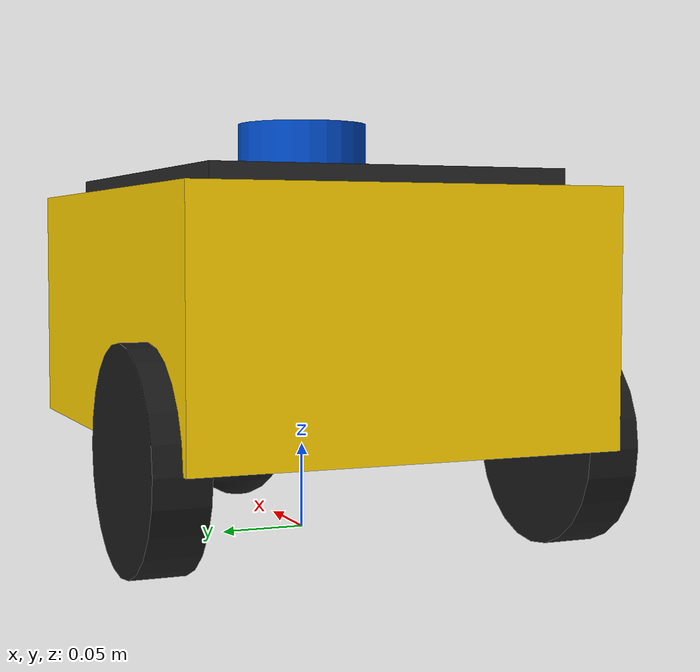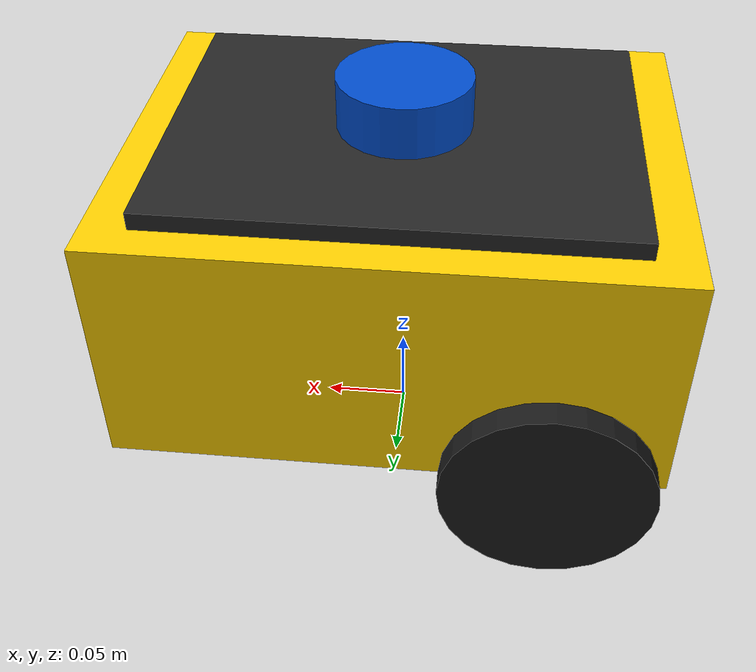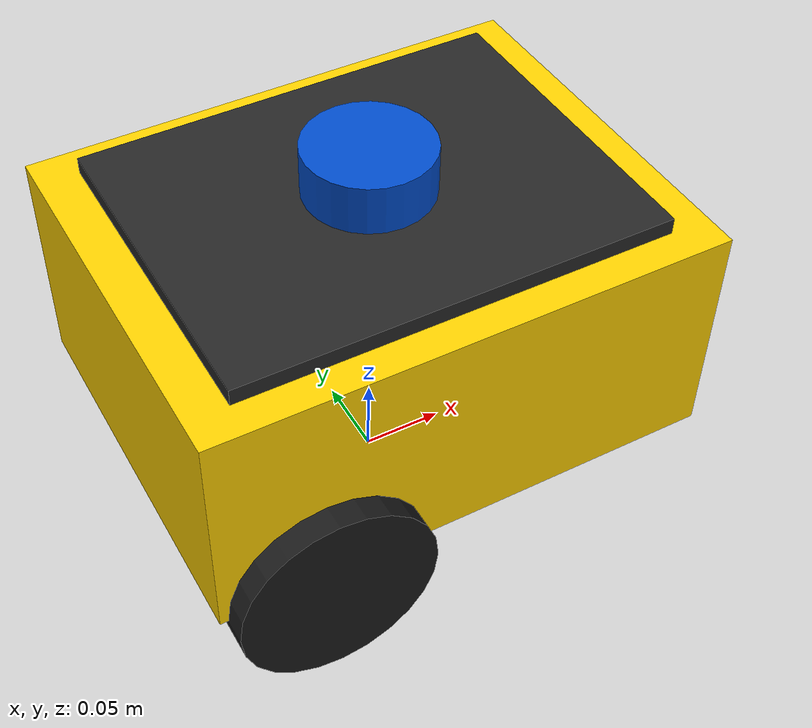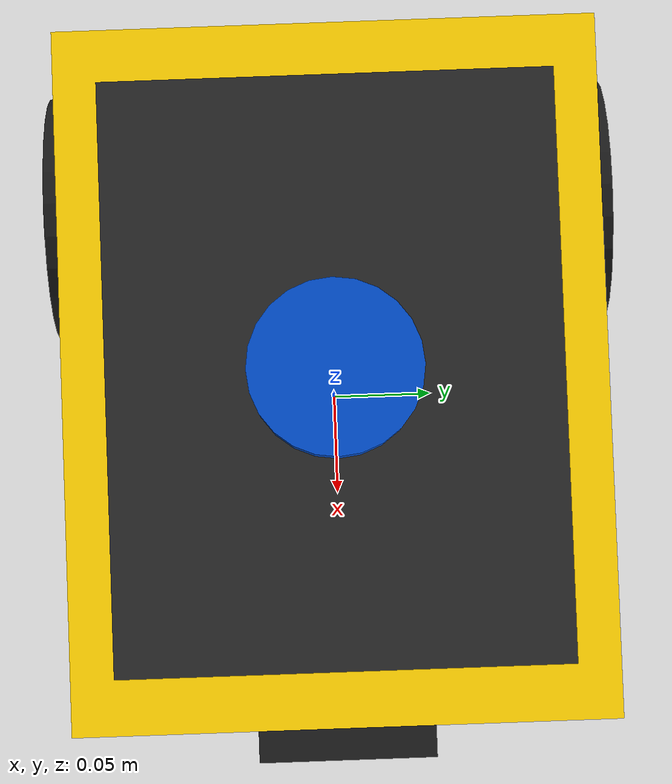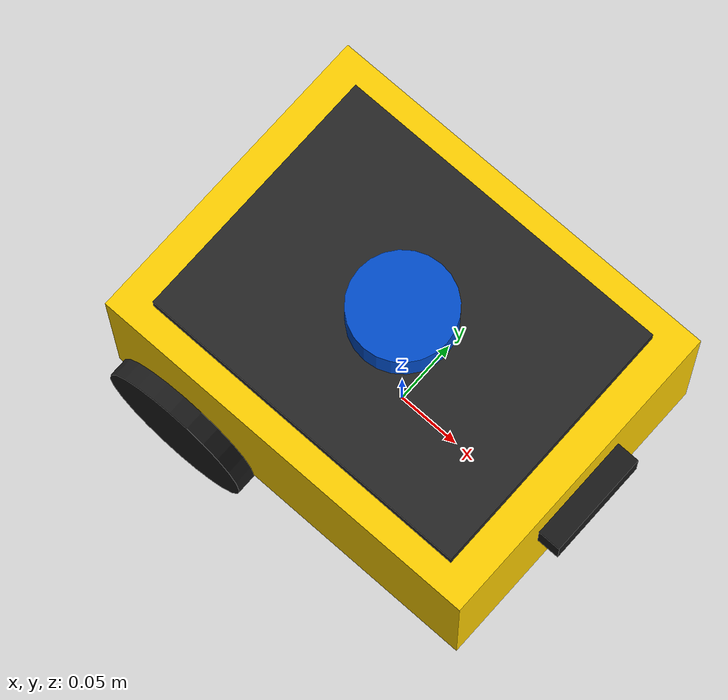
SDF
<?xml version="1.0"?>
<sdf version="1.9">
  <model name="husky">
    <!-- base_link center = wheel_radius + body_height/2 = 0.06 + 0.07 = 0.13 -->
    <pose>0 0 0.13 0 0 0</pose>

    <!-- ====== base_link (chassi) ====== -->
    <link name="base_link">
      <inertial>
        <mass>3.0</mass>
        <inertia>
          <ixx>0.025</ixx><iyy>0.035</iyy><izz>0.05</izz>
          <ixy>0</ixy><ixz>0</ixz><iyz>0</iyz>
        </inertia>
      </inertial>
      <visual name="body_visual">
        <geometry><box><size>0.31 0.24 0.14</size></box></geometry>
        <material>
          <ambient>0.95 0.75 0.05 1</ambient>
          <diffuse>1.0 0.82 0.0 1</diffuse>
          <specular>0.3 0.3 0.3 1</specular>
        </material>
      </visual>
      <collision name="body_collision">
        <geometry><box><size>0.31 0.24 0.14</size></box></geometry>
      </collision>
      <!-- Topo preto (painel decorativo) -->
      <visual name="top_visual">
        <pose>0 0 0.075 0 0 0</pose>
        <geometry><box><size>0.26 0.20 0.01</size></box></geometry>
        <material>
          <ambient>0.1 0.1 0.1 1</ambient>
          <diffuse>0.15 0.15 0.15 1</diffuse>
        </material>
      </visual>
    </link>

    <!-- ====== Rodas traseiras (2, tração) ======
         x: -0.09
         y: ±0.12 (track 0.24, flush com o corpo)
         z: -0.07 (centro da roda em z=0.06 no mundo)
    -->
    <link name="rear_left_wheel">
      <pose>-0.09 0.12 -0.07 -1.5707 0 0</pose>
      <inertial>
        <mass>0.2</mass>
        <inertia>
          <ixx>0.0003</ixx><iyy>0.0003</iyy><izz>0.0005</izz>
          <ixy>0</ixy><ixz>0</ixz><iyz>0</iyz>
        </inertia>
      </inertial>
      <visual name="v"><geometry><cylinder><radius>0.06</radius><length>0.03</length></cylinder></geometry>
        <material><diffuse>0.1 0.1 0.1 1</diffuse></material></visual>
      <collision name="c"><geometry><cylinder><radius>0.06</radius><length>0.03</length></cylinder></geometry>
        <surface><friction><ode><mu>1.2</mu><mu2>0.8</mu2></ode></friction></surface></collision>
    </link>
    <joint name="rear_left_wheel_joint" type="revolute">
      <parent>base_link</parent><child>rear_left_wheel</child>
      <axis><xyz>0 0 1</xyz><limit><lower>-1e16</lower><upper>1e16</upper></limit></axis>
    </joint>

    <link name="rear_right_wheel">
      <pose>-0.09 -0.12 -0.07 -1.5707 0 0</pose>
      <inertial>
        <mass>0.2</mass>
        <inertia>
          <ixx>0.0003</ixx><iyy>0.0003</iyy><izz>0.0005</izz>
          <ixy>0</ixy><ixz>0</ixz><iyz>0</iyz>
        </inertia>
      </inertial>
      <visual name="v"><geometry><cylinder><radius>0.06</radius><length>0.03</length></cylinder></geometry>
        <material><diffuse>0.1 0.1 0.1 1</diffuse></material></visual>
      <collision name="c"><geometry><cylinder><radius>0.06</radius><length>0.03</length></cylinder></geometry>
        <surface><friction><ode><mu>1.2</mu><mu2>0.8</mu2></ode></friction></surface></collision>
    </link>
    <joint name="rear_right_wheel_joint" type="revolute">
      <parent>base_link</parent><child>rear_right_wheel</child>
      <axis><xyz>0 0 1</xyz><limit><lower>-1e16</lower><upper>1e16</upper></limit></axis>
    </joint>

    <link name="caster_wheel">
      <pose>0.12 0 -0.10 0 0 0</pose>
      <inertial>
        <mass>0.05</mass>
        <inertia>
          <ixx>1e-5</ixx><iyy>1e-5</iyy><izz>1e-5</izz>
          <ixy>0</ixy><ixz>0</ixz><iyz>0</iyz>
        </inertia>
      </inertial>
      <visual name="v"><geometry><sphere><radius>0.03</radius></sphere></geometry>
        <material><diffuse>0.1 0.1 0.1 1</diffuse></material></visual>
      <collision name="c"><geometry><sphere><radius>0.03</radius></sphere></geometry>
        <surface><friction><ode><mu>0.01</mu><mu2>0.01</mu2></ode></friction></surface></collision>
    </link>
    <joint name="caster_joint" type="fixed">
      <parent>base_link</parent><child>caster_wheel</child>
    </joint>

    <!-- ====== LiDAR 2D centralizado em cima ======
         x=0, y=0, z = body_height/2 + lidar_half = 0.07 + 0.02 = 0.09
    -->
    <link name="base_laser">
      <pose>0 0 0.09 0 0 0</pose>
      <inertial>
        <mass>0.1</mass>
        <inertia>
          <ixx>0.0001</ixx><iyy>0.0001</iyy><izz>0.0001</izz>
          <ixy>0</ixy><ixz>0</ixz><iyz>0</iyz>
        </inertia>
      </inertial>
      <visual name="lidar_visual">
        <geometry><cylinder><radius>0.038</radius><length>0.04</length></cylinder></geometry>
        <material><diffuse>0.0 0.3 0.8 1</diffuse></material>
      </visual>
      <sensor name="lidar" type="gpu_lidar">
        <update_rate>10</update_rate>
        <topic>scan</topic>
        <always_on>1</always_on>
        <visualize>true</visualize>
        <gz_frame_id>base_laser</gz_frame_id>
        <lidar>
          <scan>
            <horizontal>
              <samples>360</samples>
              <resolution>1</resolution>
              <min_angle>-3.14159</min_angle>
              <max_angle>3.14159</max_angle>
            </horizontal>
          </scan>
          <range>
            <min>0.10</min>
            <max>12.0</max>
            <resolution>0.01</resolution>
          </range>
        </lidar>
      </sensor>
    </link>
    <joint name="laser_joint" type="fixed">
      <parent>base_link</parent>
      <child>base_laser</child>
    </joint>

    <link name="camera_link">
      <pose>0.16 0 0.02 0 0 0</pose>
      <inertial>
        <mass>0.05</mass>
        <inertia>
          <ixx>0.00001</ixx><iyy>0.00001</iyy><izz>0.00001</izz>
          <ixy>0</ixy><ixz>0</ixz><iyz>0</iyz>
        </inertia>
      </inertial>
      <visual name="camera_visual">
        <geometry><box><size>0.025 0.080 0.025</size></box></geometry>
        <material>
          <ambient>0.05 0.05 0.05 1</ambient>
          <diffuse>0.1 0.1 0.1 1</diffuse>
        </material>
      </visual>
      <sensor name="depth_camera" type="rgbd_camera">
        <update_rate>15</update_rate>
        <topic>camera</topic>
        <always_on>1</always_on>
        <visualize>false</visualize>
        <gz_frame_id>camera_link</gz_frame_id>
        <camera>
          <horizontal_fov>1.0472</horizontal_fov>
          <image>
            <width>320</width>
            <height>240</height>
            <format>R8G8B8</format>
          </image>
          <clip>
            <near>0.2</near>
            <far>8.0</far>
          </clip>
        </camera>
      </sensor>
    </link>
    <joint name="camera_joint" type="fixed">
      <parent>base_link</parent>
      <child>camera_link</child>
    </joint>

    <!-- ====== Plugins ====== -->
    <plugin filename="gz-sim-diff-drive-system" name="gz::sim::systems::DiffDrive">
      <left_joint>rear_left_wheel_joint</left_joint>
      <right_joint>rear_right_wheel_joint</right_joint>
      <wheel_separation>0.24</wheel_separation>
      <wheel_radius>0.06</wheel_radius>
      <odom_publish_frequency>30</odom_publish_frequency>
      <topic>cmd_vel</topic>
      <odom_topic>odom</odom_topic>
      <frame_id>odom</frame_id>
      <child_frame_id>base_link</child_frame_id>
      <tf_topic>/tf</tf_topic>
      <max_linear_acceleration>1.5</max_linear_acceleration>
      <max_angular_acceleration>3.0</max_angular_acceleration>
    </plugin>

    <plugin filename="gz-sim-joint-state-publisher-system"
            name="gz::sim::systems::JointStatePublisher">
      <topic>joint_states</topic>
      <joint_name>rear_left_wheel_joint</joint_name>
      <joint_name>rear_right_wheel_joint</joint_name>
    </plugin>

    <plugin filename="gz-sim-pose-publisher-system"
            name="gz::sim::systems::PosePublisher">
      <publish_link_pose>true</publish_link_pose>
      <publish_sensor_pose>true</publish_sensor_pose>
      <publish_collision_pose>false</publish_collision_pose>
      <publish_visual_pose>false</publish_visual_pose>
      <publish_nested_model_pose>false</publish_nested_model_pose>
      <use_pose_vector_msg>true</use_pose_vector_msg>
      <static_publisher>false</static_publisher>
      <static_update_frequency>1</static_update_frequency>
    </plugin>
  </model>
</sdf>
